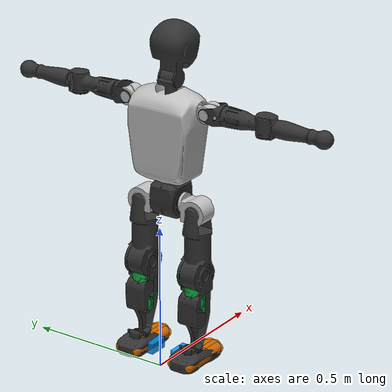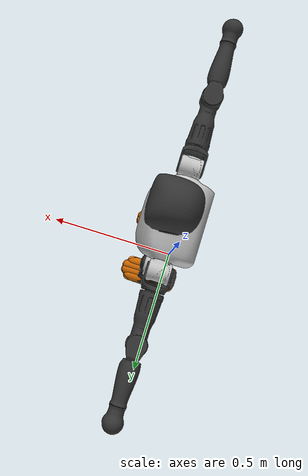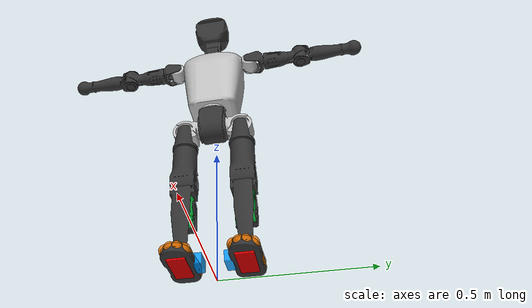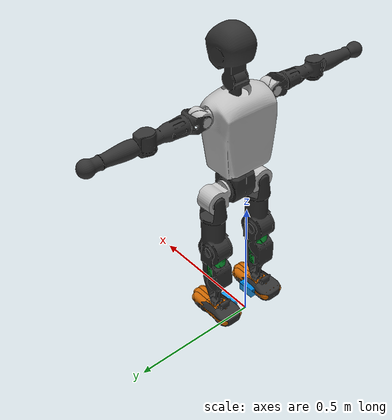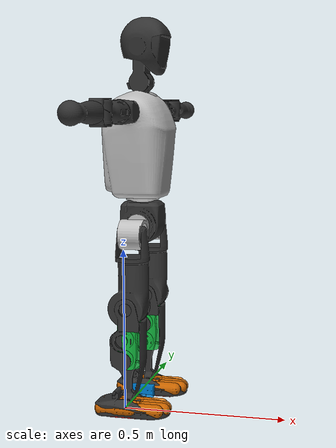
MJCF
<mujoco model="T1-Headless">
  <compiler angle="radian" meshdir="assets" autolimits="true"/>

  <asset>
    <material name="light_gray" rgba="0.76 0.76 0.76 1"/>
    <material name="medium_gray" rgba="0.2 0.2 0.2 1"/>

    <mesh file="Trunk.stl" maxhullvert="45"/>
    <mesh file="H1.stl"/>
    <mesh file="H2.stl"/>
    <mesh file="AL1.stl"/>
    <mesh file="AL2.stl"/>
    <mesh file="AL3.stl"/>
    <mesh file="left_hand_link.stl"/>
    <mesh file="AR1.stl"/>
    <mesh file="AR2.stl"/>
    <mesh file="AR3.stl"/>
    <mesh file="right_hand_link.stl"/>
    <mesh file="Waist.stl"/>
    <mesh file="Hip_Pitch_Left.stl"/>
    <mesh file="Hip_Roll_Left.stl"/>
    <mesh file="Hip_Yaw_Left.stl"/>
    <mesh file="Shank_Left.stl"/>
    <mesh file="Ankle_Cross_Left.stl"/>
    <mesh file="left_foot_link.stl"/>
    <mesh file="Hip_Pitch_Right.stl"/>
    <mesh file="Hip_Roll_Right.stl"/>
    <mesh file="Hip_Yaw_Right.stl"/>
    <mesh file="Shank_Right.stl"/>
    <mesh file="Ankle_Cross_Right.stl"/>
    <mesh file="right_foot_link.stl"/>
  </asset>

  <default>
    <default class="t1">
      <geom condim="1" material="medium_gray" contype="0" conaffinity="0"/>
      <site rgba="1 0 0 1" size="0.01" group="5"/>
      <default class="visual">
        <geom type="mesh" group="2"/>
      </default>
      <default class="collision">
        <geom group="3" rgba="0 1 0 0.5" type="capsule" contype="1" conaffinity="1"/>
      </default>
    </default>
  </default>

  <worldbody>
    <body name="Trunk" pos="0 0 .7" childclass="t1">
      <light pos="0 0 2" mode="trackcom" castshadow="false"/>
      <freejoint/>
      <inertial pos="0.0551365 -1.42058e-06 0.105062" quat="0.99996 1.40561e-05 -0.00899532 -1.39249e-05" mass="11.7"
        diaginertia="0.0915404 0.0767787 0.0556055"/>
      <site name="imu"/>
      <camera name="track" pos="1.248 -0.947 0.5" xyaxes="0.628 0.779 -0.000 -0.274 0.221 0.936" mode="trackcom"/>
      <geom class="visual" material="light_gray" mesh="Trunk"/>
      <geom name="trunk_collision" class="collision" mesh="Trunk" type="mesh"/>
      <body name="H1" pos="0.0625 0 0.243">
        <inertial pos="-0.000508 -0.001403 0.057432" quat="0.763881 -0.0132172 0.00173419 0.645219" mass="0.44391"
          diaginertia="0.000241549 0.00022351 0.000149941"/>
        <!-- Head joints removed: AAHead_yaw and Head_pitch are fixed -->
        <geom class="visual" mesh="H1"/>
        <body name="H2" pos="0 0 0.06185">
          <inertial pos="0.007802 0.001262 0.098631" quat="0.988453 0.106172 -0.0745686 -0.0782786" mass="0.631019"
            diaginertia="0.00203553 0.00192467 0.00172381"/>
          <geom class="visual" mesh="H2"/>
          <geom name="head_collision" class="collision" size="0.08" pos="0.01 0 0.11" type="sphere"/>
        </body>
      </body>
      <body name="AL1" pos="0.0575 0.1063 0.219" quat="1 0 0.000440565 0">
        <inertial pos="-0.000677 0.044974 0" quat="0.50423 0.495734 -0.50423 0.495734" mass="0.53"
          diaginertia="0.001367 0.00129329 0.000292711"/>
        <joint name="Left_Shoulder_Pitch" axis="0 1 0" range="-3.31 1.22"/>
        <geom class="visual" material="light_gray" mesh="AL1"/>
        <body name="AL2" pos="0 0.047 0">
          <inertial pos="0.003862 0.037976 0" quat="0.487991 0.511727 -0.487991 0.511727" mass="0.16"
            diaginertia="0.000401 0.00034538 0.00017662"/>
          <joint name="Left_Shoulder_Roll" axis="1 0 0" range="-1.74 1.57"/>
          <geom class="visual" mesh="AL2"/>
          <geom name="left_shoulder_collision" class="collision" size="0.04" type="sphere"/>
          <body name="AL3" pos="0.00025 0.0605 0">
            <inertial pos="0 0.085353 -9.9e-05" quat="0.70641 0.707803 0 0" mass="1.02"
              diaginertia="0.012869 0.012798 0.000620953"/>
            <joint name="Left_Elbow_Pitch" axis="0 1 0" range="-2.27 2.27"/>
            <geom class="visual" mesh="AL3"/>
            <geom name="left_upper_arm_collision" class="collision" size="0.03 0.075" pos="0 0.05 0"
              quat="0.707105 0.707108 0 0"/>
            <body name="left_hand_link" pos="0 0.1471 0">
              <inertial pos="-0.000108 0.109573 0.000591" quat="0.707866 0.706347 -5.22939e-05 -0.000214913"
                mass="0.327214" diaginertia="0.008159 0.00813104 0.000214962"/>
              <joint name="Left_Elbow_Yaw" axis="0 0 1" range="-2.44 0"/>
              <geom class="visual" mesh="left_hand_link"/>
              <geom name="left_elbow_collision" class="collision" size="0.04" type="sphere"/>
              <geom name="left_lower_arm_collision" class="collision" size="0.03 0.0875" pos="0 0.13 0"
                quat="0.707105 0.707108 0 0"/>
              <site name="left_hand" pos="0 .215 0"/>
            </body>
          </body>
        </body>
      </body>
      <body name="AR1" pos="0.0575 -0.1063 0.219" quat="1 0 0.000440565 0">
        <inertial pos="-0.000677 -0.044974 0" quat="0.50423 0.495734 -0.50423 0.495734" mass="0.53"
          diaginertia="0.001367 0.00129329 0.000292711"/>
        <joint name="Right_Shoulder_Pitch" axis="0 1 0" range="-3.31 1.22"/>
        <geom class="visual" material="light_gray" mesh="AR1"/>
        <body name="AR2" pos="0 -0.047 0">
          <inertial pos="0.003862 -0.037976 0" quat="0.511727 0.487991 -0.511727 0.487991" mass="0.16"
            diaginertia="0.000401 0.00034538 0.00017662"/>
          <joint name="Right_Shoulder_Roll" axis="1 0 0" range="-1.57 1.74"/>
          <geom class="visual" mesh="AR2"/>
          <geom name="right_shoulder_collision" class="collision" size="0.04" type="sphere"/>
          <body name="AR3" pos="0.00025 -0.0605 0">
            <inertial pos="0 -0.085353 -9.9e-05" quat="0.707803 0.70641 0 0" mass="1.02"
              diaginertia="0.012869 0.012798 0.000620953"/>
            <joint name="Right_Elbow_Pitch" axis="0 1 0" range="-2.27 2.27"/>
            <geom class="visual" mesh="AR3"/>
            <geom name="right_upper_arm_collision" class="collision" size="0.03 0.075" pos="0 -0.05 0"
              quat="0.707105 0.707108 0 0"/>
            <body name="right_hand_link" pos="0 -0.1471 0">
              <inertial pos="-0.000108 -0.109573 0.000591" quat="0.706347 0.707866 0.000214913 5.22939e-05"
                mass="0.327214" diaginertia="0.008159 0.00813104 0.000214962"/>
              <joint name="Right_Elbow_Yaw" axis="0 0 1" range="0 2.44"/>
              <geom class="visual" mesh="right_hand_link"/>
              <geom name="right_elbow_collision" class="collision" size="0.04" type="sphere"/>
              <geom name="right_lower_arm_collision" class="collision" size="0.03 0.0875" pos="0 -0.13 0"
                quat="0.707105 0.707108 0 0"/>
              <site name="right_hand" pos="0 -.215 0"/>
            </body>
          </body>
        </body>
      </body>
      <body name="Waist" pos="0.0625 0 -0.1155">
        <inertial pos="0.002284 3e-06 0.007301" quat="0.983649 0.000360386 -0.180076 0.00269791" mass="2.581"
          diaginertia="0.00536742 0.005299 0.00474258"/>
        <joint name="Waist" axis="0 0 1" range="-1.57 1.57"/>
        <geom class="visual" mesh="Waist"/>
        <geom name="waist_collision" class="collision" type="sphere" size="0.07" pos="0 0 .01"/>
        <body name="Hip_Pitch_Left" pos="0 0.106 0">
          <inertial pos="0.000534 -0.007296 -0.018083" quat="0.975141 0.2211 0.0145808 0.0017406" mass="1.021"
            diaginertia="0.00180547 0.00145926 0.00125327"/>
          <joint name="Left_Hip_Pitch" axis="0 1 0" range="-1.8 1.57"/>
          <geom class="visual" material="light_gray" mesh="Hip_Pitch_Left"/>
          <body name="Hip_Roll_Left" pos="0 0 -0.02">
            <inertial pos="0.001101 2.4e-05 -0.05375" quat="0.707081 -0.00599604 -0.00599604 0.707081" mass="0.385"
              diaginertia="0.001743 0.00151729 0.000514712"/>
            <joint name="Left_Hip_Roll" axis="1 0 0" range="-0.2 1.57"/>
            <geom class="visual" mesh="Hip_Roll_Left"/>
            <body name="Hip_Yaw_Left" pos="0 0 -0.081854">
              <inertial pos="-0.007233 0.000206 -0.089184" quat="0.696808 -0.033953 -0.0315708 0.715758" mass="2.166"
                diaginertia="0.0257334 0.0253024 0.00259215"/>
              <joint name="Left_Hip_Yaw" axis="0 0 1" range="-1 1"/>
              <geom class="visual" mesh="Hip_Yaw_Left"/>
              <geom name="left_thigh_collision" class="collision" size="0.05 0.08"/>
              <body name="Shank_Left" pos="-0.014 0 -0.134">
                <inertial pos="-0.006012 0.000259 -0.124318" quat="0.997573 0.00144024 -0.023949 0.0653706" mass="1.73"
                  diaginertia="0.0346951 0.0345375 0.00185844"/>
                <joint name="Left_Knee_Pitch" axis="0 1 0" range="0 2.34"/>
                <geom class="visual" mesh="Shank_Left"/>
                <geom name="left_shin_collision" class="collision" size="0.05 0.075" pos="0 0 -0.12"/>
                <geom name="left_knee_collision" class="collision" size="0.06" type="sphere"/>
                <geom name="left_shin_vis" type="cylinder" size="0.035 0.08" pos="0 0 -0.10"
                  rgba="0.1 0.85 0.3 0.85" contype="0" conaffinity="0" group="2"/>
                <site name="left_shin" pos="0 0 -0.10"/>
                <body name="Ankle_Cross_Left" pos="0 0 -0.28">
                  <inertial pos="-0.003722 0 -0.007981" quat="0.443136 0.551027 0.551027 0.443136" mass="0.073"
                    diaginertia="2.9e-05 2.56589e-05 1.13411e-05"/>
                  <joint name="Left_Ankle_Pitch" axis="0 1 0" range="-0.87 0.35"/>
                  <geom class="visual" mesh="Ankle_Cross_Left"/>
                  <body name="left_foot_link" pos="0 0.00025 -0.012">
                    <inertial pos="-0.000249 0 -0.00914" quat="0 0.620755 0 0.784005" mass="0.685"
                      diaginertia="0.00269786 0.002385 0.00218714"/>
                    <joint name="Left_Ankle_Roll" axis="1 0 0" range="-0.44 0.44"/>
                    <geom class="visual" mesh="left_foot_link"/>
                    <geom name="left_foot1_collision" type="capsule" size="0.02" class="collision" group="1" rgba="1 0.5 0 0.8"
                      fromto="-0.08 -0.03 -0.01 0.09 -0.03 -0.01" margin="0.002" gap="0.002"/>
                    <geom name="left_foot2_collision" type="capsule" size="0.02" class="collision" group="1" rgba="1 0.5 0 0.8"
                      fromto="-0.08 0.03 -0.01 0.09 0.03 -0.01" margin="0.002" gap="0.002"/>
                    <geom name="left_foot3_collision" type="capsule" size="0.02" class="collision" group="1" rgba="1 0.5 0 0.8"
                      fromto="-0.08 -0.01 -0.01 0.105 -0.01 -0.01" margin="0.002" gap="0.002"/>
                    <geom name="left_foot4_collision" type="capsule" size="0.02" class="collision" group="1" rgba="1 0.5 0 0.8"
                      fromto="-0.08 0.01 -0.01 0.105 0.01 -0.01" margin="0.002" gap="0.002"/>
                    <!-- inner-face sensor indicator: thin box on medial face, centred at foot midpoint -->
                    <geom name="left_inner_vis" type="box" size="0.035 0.015 0.018" pos="-0.005 -0.055 -0.012"
                      rgba="0 0.6 1 0.85" contype="0" conaffinity="0" group="2"/>
                    <geom name="left_sole_vis" type="box" size="0.065 0.03 0.005" pos="0.0125 0 -0.032"
                      rgba="1 0 0 0.85" contype="0" conaffinity="0" group="2"/>
                    <site name="left_foot"/>
                  </body>
                </body>
              </body>
            </body>
          </body>
        </body>
        <body name="Hip_Pitch_Right" pos="0 -0.106 0">
          <inertial pos="0.000534 0.007514 -0.018082" quat="0.973446 -0.228403 0.0147148 -0.00419349" mass="1.021"
            diaginertia="0.00180552 0.0014632 0.00124928"/>
          <joint name="Right_Hip_Pitch" axis="0 1 0" range="-1.8 1.57"/>
          <geom class="visual" material="light_gray" mesh="Hip_Pitch_Right"/>
          <body name="Hip_Roll_Right" pos="0 0 -0.02">
            <inertial pos="0.001099 2.4e-05 -0.053748" quat="0.707081 -0.00599604 -0.00599604 0.707081" mass="0.385"
              diaginertia="0.001743 0.00151729 0.000514712"/>
            <joint name="Right_Hip_Roll" axis="1 0 0" range="-1.57 0.2"/>
            <geom class="visual" mesh="Hip_Roll_Right"/>
            <body name="Hip_Yaw_Right" pos="0 0 -0.081854">
              <inertial pos="-0.007191 -0.000149 -0.08922" quat="0.714468 -0.0315638 -0.0336391 0.698146" mass="2.17"
                diaginertia="0.0257623 0.0253298 0.00259389"/>
              <joint name="Right_Hip_Yaw" axis="0 0 1" range="-1 1"/>
              <geom class="visual" mesh="Hip_Yaw_Right"/>
              <geom name="right_thigh_collision" class="collision" size="0.05 0.08"/>
              <body name="Shank_Right" pos="-0.014 0 -0.134">
                <inertial pos="-0.005741 -0.000541 -0.122602" quat="0.99926 -0.000580963 -0.023461 -0.0304754"
                  mass="1.79" diaginertia="0.0351717 0.0349574 0.00196589"/>
                <joint name="Right_Knee_Pitch" axis="0 1 0" range="0 2.34"/>
                <geom class="visual" mesh="Shank_Right"/>
                <geom name="right_knee_collision" class="collision" size="0.06" type="sphere"/>
                <geom name="right_shin_collision" class="collision" size="0.05 0.075" pos="0 0 -0.12"/>
                <geom name="right_shin_vis" type="cylinder" size="0.035 0.08" pos="0 0 -0.10"
                  rgba="0.1 0.85 0.3 0.85" contype="0" conaffinity="0" group="2"/>
                <site name="right_shin" pos="0 0 -0.10"/>
                <body name="Ankle_Cross_Right" pos="0 0 -0.28">
                  <inertial pos="-0.003722 0 -0.007981" quat="0.443136 0.551027 0.551027 0.443136" mass="0.073"
                    diaginertia="2.9e-05 2.56589e-05 1.13411e-05"/>
                  <joint name="Right_Ankle_Pitch" axis="0 1 0" range="-0.87 0.35"/>
                  <geom class="visual" mesh="Ankle_Cross_Right"/>
                  <body name="right_foot_link" pos="0 -0.00025 -0.012">
                    <inertial pos="-0.000248 0 -0.00914" quat="0 0.620755 0 0.784005" mass="0.685"
                      diaginertia="0.00269786 0.002385 0.00218714"/>
                    <joint name="Right_Ankle_Roll" axis="1 0 0" range="-0.44 0.44"/>
                    <geom class="visual" mesh="right_foot_link"/>
                    <geom name="right_foot1_collision" type="capsule" size="0.02" class="collision" group="1" rgba="1 0.5 0 0.8"
                      fromto="-0.08 -0.03 -0.01 0.09 -0.03 -0.01" margin="0.002" gap="0.002"/>
                    <geom name="right_foot2_collision" type="capsule" size="0.02" class="collision" group="1" rgba="1 0.5 0 0.8"
                      fromto="-0.08 0.03 -0.01 0.09 0.03 -0.01" margin="0.002" gap="0.002"/>
                    <geom name="right_foot3_collision" type="capsule" size="0.02" class="collision" group="1" rgba="1 0.5 0 0.8"
                      fromto="-0.08 -0.01 -0.01 0.105 -0.01 -0.01" margin="0.002" gap="0.002"/>
                    <geom name="right_foot4_collision" type="capsule" size="0.02" class="collision" group="1" rgba="1 0.5 0 0.8"
                      fromto="-0.08 0.01 -0.01 0.105 0.01 -0.01" margin="0.002" gap="0.002"/>
                    <!-- inner-face sensor indicator: thin box on medial face, centred at foot midpoint -->
                    <geom name="right_inner_vis" type="box" size="0.035 0.015 0.018" pos="-0.005 0.055 -0.012"
                      rgba="0 0.6 1 0.85" contype="0" conaffinity="0" group="2"/>
                    <geom name="right_sole_vis" type="box" size="0.065 0.03 0.005" pos="0.0125 0 -0.032"
                      rgba="1 0 0 0.85" contype="0" conaffinity="0" group="2"/>
                    <site name="right_foot"/>
                  </body>
                </body>
              </body>
            </body>
          </body>
        </body>
      </body>
    </body>
  </worldbody>

  <sensor>
    <gyro name="imu_ang_vel" site="imu"/>
    <velocimeter name="imu_lin_vel" site="imu"/>
    <accelerometer name="imu_lin_acc" site="imu"/>
    <subtreeangmom name="root_angmom" body="Trunk"/>
  </sensor>

  <contact>
    <exclude body1="Hip_Yaw_Right" body2="Waist"/>
    <exclude body1="Hip_Yaw_Left" body2="Waist"/>
    <exclude body1="AR2" body2="Trunk"/>
    <exclude body1="AL2" body2="Trunk"/>
  </contact>
</mujoco>
